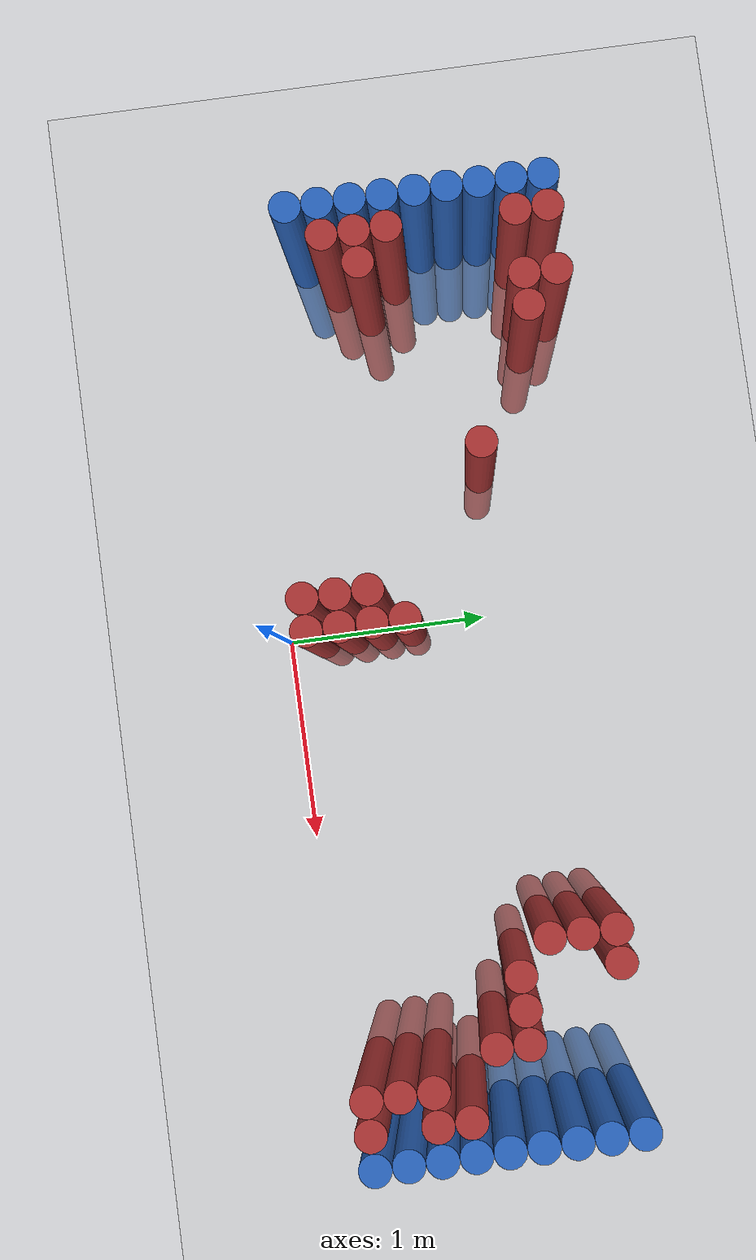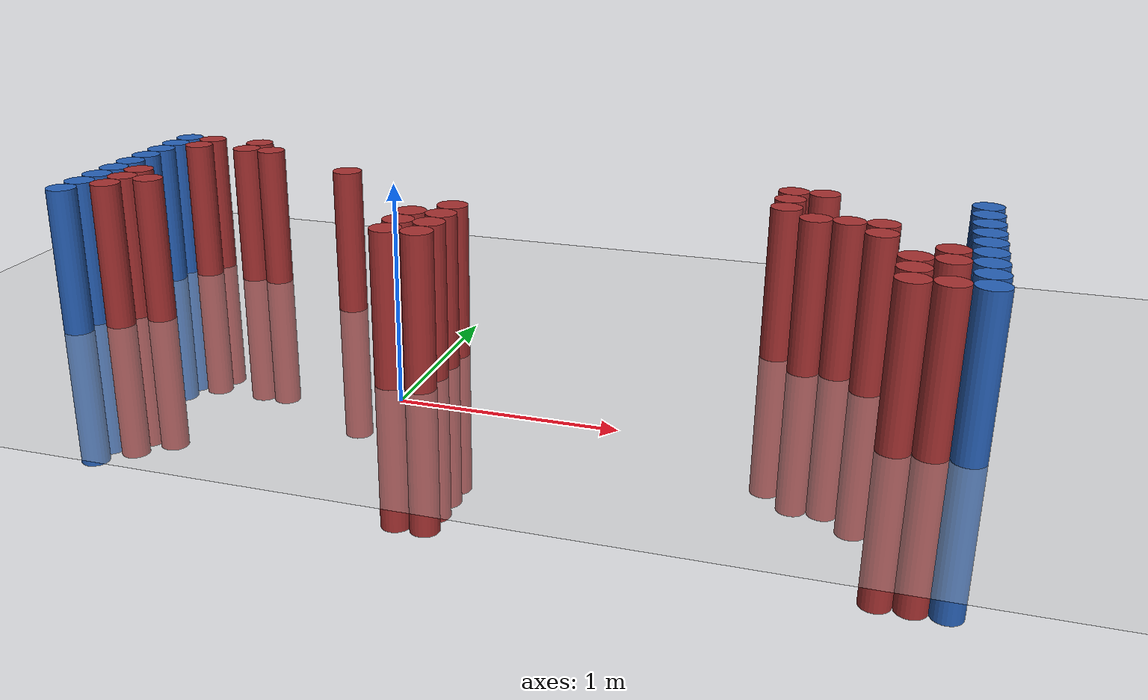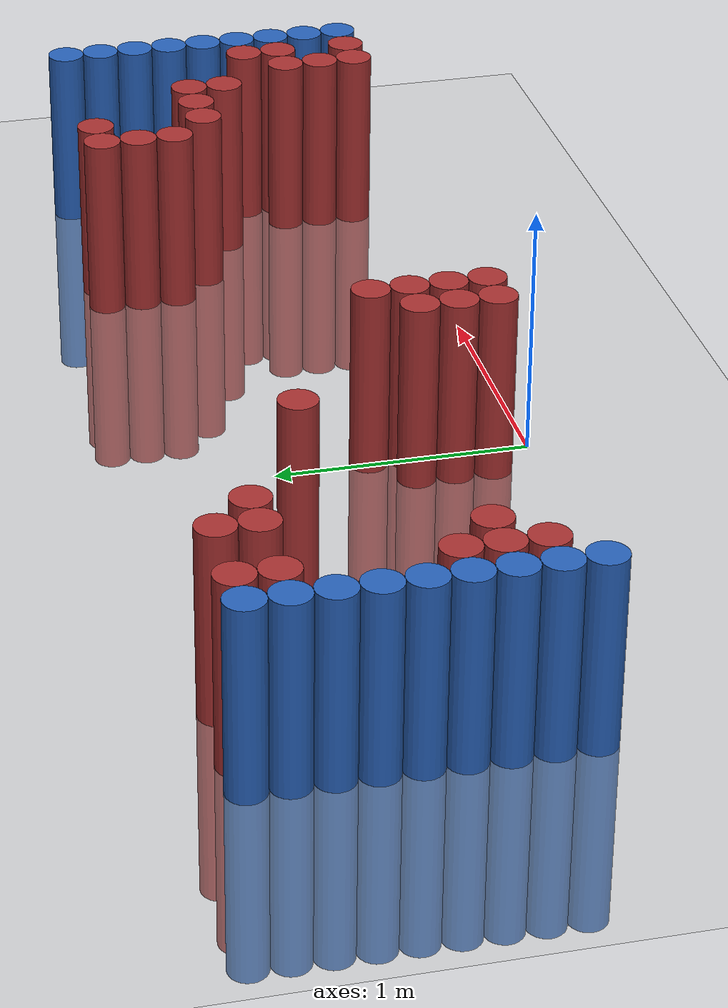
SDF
<sdf version="1.6">
 <world name="default">
  <model name="ground_plane">
   <static>1</static>
   <link name="link">
    <collision name="collision">
     <geometry><plane><normal>0 0 1</normal><size>100 100</size></plane></geometry>
     <surface><friction><ode><mu>100</mu><mu2>50</mu2></ode></friction></surface>
    </collision>
    <visual name="visual">
     <cast_shadows>0</cast_shadows>
     <geometry><plane><normal>0 0 1</normal><size>100 100</size></plane></geometry>
     <material>
      <script><uri>file://media/materials/scripts/gazebo.material</uri><name>Gazebo/Grey</name></script>
     </material>
    </visual>
   </link>
  </model>
  <model name="unit_cylinder_97">
   <static>1</static>
   <pose>-1.925000 0.325000 0.000000 0.000000 0.000000 0.000000</pose>
   <link name="link">
    <inertial>
     <mass>1</mass>
     <inertia><ixx>0.145833</ixx><ixy>0</ixy><ixz>0</ixz><iyy>0.145833</iyy><iyz>0</iyz><izz>0.125</izz></inertia>
    </inertial>
    <collision name="collision">
     <geometry><cylinder><radius>0.075000</radius><length>1.5</length></cylinder></geometry>
    </collision>
    <visual name="visual">
     <geometry><cylinder><radius>0.075000</radius><length>1.5</length></cylinder></geometry>
     <material>
      <ambient>0.152000 0.379000 0.720000 1</ambient>
      <diffuse>0.152000 0.379000 0.720000 1</diffuse>
     </material>
     <material>
      <script><name>Gazebo/Grey</name><uri>file://media/materials/scripts/gazebo.material</uri></script>
     </material>
    </visual>
   </link>
  </model>
  <model name="unit_cylinder_98">
   <static>1</static>
   <pose>-1.925000 0.475000 0.000000 0.000000 0.000000 0.000000</pose>
   <link name="link">
    <inertial>
     <mass>1</mass>
     <inertia><ixx>0.145833</ixx><ixy>0</ixy><ixz>0</ixz><iyy>0.145833</iyy><iyz>0</iyz><izz>0.125</izz></inertia>
    </inertial>
    <collision name="collision">
     <geometry><cylinder><radius>0.075000</radius><length>1.5</length></cylinder></geometry>
    </collision>
    <visual name="visual">
     <geometry><cylinder><radius>0.075000</radius><length>1.5</length></cylinder></geometry>
     <material>
      <ambient>0.152000 0.379000 0.720000 1</ambient>
      <diffuse>0.152000 0.379000 0.720000 1</diffuse>
     </material>
     <material>
      <script><name>Gazebo/Grey</name><uri>file://media/materials/scripts/gazebo.material</uri></script>
     </material>
    </visual>
   </link>
  </model>
  <model name="unit_cylinder_99">
   <static>1</static>
   <pose>-1.925000 0.625000 0.000000 0.000000 0.000000 0.000000</pose>
   <link name="link">
    <inertial>
     <mass>1</mass>
     <inertia><ixx>0.145833</ixx><ixy>0</ixy><ixz>0</ixz><iyy>0.145833</iyy><iyz>0</iyz><izz>0.125</izz></inertia>
    </inertial>
    <collision name="collision">
     <geometry><cylinder><radius>0.075000</radius><length>1.5</length></cylinder></geometry>
    </collision>
    <visual name="visual">
     <geometry><cylinder><radius>0.075000</radius><length>1.5</length></cylinder></geometry>
     <material>
      <ambient>0.152000 0.379000 0.720000 1</ambient>
      <diffuse>0.152000 0.379000 0.720000 1</diffuse>
     </material>
     <material>
      <script><name>Gazebo/Grey</name><uri>file://media/materials/scripts/gazebo.material</uri></script>
     </material>
    </visual>
   </link>
  </model>
  <model name="unit_cylinder_100">
   <static>1</static>
   <pose>-1.925000 0.775000 0.000000 0.000000 0.000000 0.000000</pose>
   <link name="link">
    <inertial>
     <mass>1</mass>
     <inertia><ixx>0.145833</ixx><ixy>0</ixy><ixz>0</ixz><iyy>0.145833</iyy><iyz>0</iyz><izz>0.125</izz></inertia>
    </inertial>
    <collision name="collision">
     <geometry><cylinder><radius>0.075000</radius><length>1.5</length></cylinder></geometry>
    </collision>
    <visual name="visual">
     <geometry><cylinder><radius>0.075000</radius><length>1.5</length></cylinder></geometry>
     <material>
      <ambient>0.152000 0.379000 0.720000 1</ambient>
      <diffuse>0.152000 0.379000 0.720000 1</diffuse>
     </material>
     <material>
      <script><name>Gazebo/Grey</name><uri>file://media/materials/scripts/gazebo.material</uri></script>
     </material>
    </visual>
   </link>
  </model>
  <model name="unit_cylinder_101">
   <static>1</static>
   <pose>-1.925000 0.925000 0.000000 0.000000 0.000000 0.000000</pose>
   <link name="link">
    <inertial>
     <mass>1</mass>
     <inertia><ixx>0.145833</ixx><ixy>0</ixy><ixz>0</ixz><iyy>0.145833</iyy><iyz>0</iyz><izz>0.125</izz></inertia>
    </inertial>
    <collision name="collision">
     <geometry><cylinder><radius>0.075000</radius><length>1.5</length></cylinder></geometry>
    </collision>
    <visual name="visual">
     <geometry><cylinder><radius>0.075000</radius><length>1.5</length></cylinder></geometry>
     <material>
      <ambient>0.152000 0.379000 0.720000 1</ambient>
      <diffuse>0.152000 0.379000 0.720000 1</diffuse>
     </material>
     <material>
      <script><name>Gazebo/Grey</name><uri>file://media/materials/scripts/gazebo.material</uri></script>
     </material>
    </visual>
   </link>
  </model>
  <model name="unit_cylinder_102">
   <static>1</static>
   <pose>-1.925000 1.075000 0.000000 0.000000 0.000000 0.000000</pose>
   <link name="link">
    <inertial>
     <mass>1</mass>
     <inertia><ixx>0.145833</ixx><ixy>0</ixy><ixz>0</ixz><iyy>0.145833</iyy><iyz>0</iyz><izz>0.125</izz></inertia>
    </inertial>
    <collision name="collision">
     <geometry><cylinder><radius>0.075000</radius><length>1.5</length></cylinder></geometry>
    </collision>
    <visual name="visual">
     <geometry><cylinder><radius>0.075000</radius><length>1.5</length></cylinder></geometry>
     <material>
      <ambient>0.152000 0.379000 0.720000 1</ambient>
      <diffuse>0.152000 0.379000 0.720000 1</diffuse>
     </material>
     <material>
      <script><name>Gazebo/Grey</name><uri>file://media/materials/scripts/gazebo.material</uri></script>
     </material>
    </visual>
   </link>
  </model>
  <model name="unit_cylinder_103">
   <static>1</static>
   <pose>-1.925000 1.225000 0.000000 0.000000 0.000000 0.000000</pose>
   <link name="link">
    <inertial>
     <mass>1</mass>
     <inertia><ixx>0.145833</ixx><ixy>0</ixy><ixz>0</ixz><iyy>0.145833</iyy><iyz>0</iyz><izz>0.125</izz></inertia>
    </inertial>
    <collision name="collision">
     <geometry><cylinder><radius>0.075000</radius><length>1.5</length></cylinder></geometry>
    </collision>
    <visual name="visual">
     <geometry><cylinder><radius>0.075000</radius><length>1.5</length></cylinder></geometry>
     <material>
      <ambient>0.152000 0.379000 0.720000 1</ambient>
      <diffuse>0.152000 0.379000 0.720000 1</diffuse>
     </material>
     <material>
      <script><name>Gazebo/Grey</name><uri>file://media/materials/scripts/gazebo.material</uri></script>
     </material>
    </visual>
   </link>
  </model>
  <model name="unit_cylinder_104">
   <static>1</static>
   <pose>-1.925000 1.375000 0.000000 0.000000 0.000000 0.000000</pose>
   <link name="link">
    <inertial>
     <mass>1</mass>
     <inertia><ixx>0.145833</ixx><ixy>0</ixy><ixz>0</ixz><iyy>0.145833</iyy><iyz>0</iyz><izz>0.125</izz></inertia>
    </inertial>
    <collision name="collision">
     <geometry><cylinder><radius>0.075000</radius><length>1.5</length></cylinder></geometry>
    </collision>
    <visual name="visual">
     <geometry><cylinder><radius>0.075000</radius><length>1.5</length></cylinder></geometry>
     <material>
      <ambient>0.152000 0.379000 0.720000 1</ambient>
      <diffuse>0.152000 0.379000 0.720000 1</diffuse>
     </material>
     <material>
      <script><name>Gazebo/Grey</name><uri>file://media/materials/scripts/gazebo.material</uri></script>
     </material>
    </visual>
   </link>
  </model>
  <model name="unit_cylinder_105">
   <static>1</static>
   <pose>-1.925000 1.525000 0.000000 0.000000 0.000000 0.000000</pose>
   <link name="link">
    <inertial>
     <mass>1</mass>
     <inertia><ixx>0.145833</ixx><ixy>0</ixy><ixz>0</ixz><iyy>0.145833</iyy><iyz>0</iyz><izz>0.125</izz></inertia>
    </inertial>
    <collision name="collision">
     <geometry><cylinder><radius>0.075000</radius><length>1.5</length></cylinder></geometry>
    </collision>
    <visual name="visual">
     <geometry><cylinder><radius>0.075000</radius><length>1.5</length></cylinder></geometry>
     <material>
      <ambient>0.152000 0.379000 0.720000 1</ambient>
      <diffuse>0.152000 0.379000 0.720000 1</diffuse>
     </material>
     <material>
      <script><name>Gazebo/Grey</name><uri>file://media/materials/scripts/gazebo.material</uri></script>
     </material>
    </visual>
   </link>
  </model>
  <model name="unit_cylinder_126">
   <static>1</static>
   <pose>-1.775000 0.475000 0.000000 0.000000 0.000000 0.000000</pose>
   <link name="link">
    <inertial>
     <mass>1</mass>
     <inertia><ixx>0.145833</ixx><ixy>0</ixy><ixz>0</ixz><iyy>0.145833</iyy><iyz>0</iyz><izz>0.125</izz></inertia>
    </inertial>
    <collision name="collision">
     <geometry><cylinder><radius>0.075000</radius><length>1.5</length></cylinder></geometry>
    </collision>
    <visual name="visual">
     <geometry><cylinder><radius>0.075000</radius><length>1.5</length></cylinder></geometry>
     <material>
      <ambient>0.648000 0.192000 0.192000 1</ambient>
      <diffuse>0.648000 0.192000 0.192000 1</diffuse>
     </material>
     <material>
      <script><name>Gazebo/Grey</name><uri>file://media/materials/scripts/gazebo.material</uri></script>
     </material>
    </visual>
   </link>
  </model>
  <model name="unit_cylinder_127">
   <static>1</static>
   <pose>-1.775000 0.625000 0.000000 0.000000 0.000000 0.000000</pose>
   <link name="link">
    <inertial>
     <mass>1</mass>
     <inertia><ixx>0.145833</ixx><ixy>0</ixy><ixz>0</ixz><iyy>0.145833</iyy><iyz>0</iyz><izz>0.125</izz></inertia>
    </inertial>
    <collision name="collision">
     <geometry><cylinder><radius>0.075000</radius><length>1.5</length></cylinder></geometry>
    </collision>
    <visual name="visual">
     <geometry><cylinder><radius>0.075000</radius><length>1.5</length></cylinder></geometry>
     <material>
      <ambient>0.648000 0.192000 0.192000 1</ambient>
      <diffuse>0.648000 0.192000 0.192000 1</diffuse>
     </material>
     <material>
      <script><name>Gazebo/Grey</name><uri>file://media/materials/scripts/gazebo.material</uri></script>
     </material>
    </visual>
   </link>
  </model>
  <model name="unit_cylinder_128">
   <static>1</static>
   <pose>-1.775000 0.775000 0.000000 0.000000 0.000000 0.000000</pose>
   <link name="link">
    <inertial>
     <mass>1</mass>
     <inertia><ixx>0.145833</ixx><ixy>0</ixy><ixz>0</ixz><iyy>0.145833</iyy><iyz>0</iyz><izz>0.125</izz></inertia>
    </inertial>
    <collision name="collision">
     <geometry><cylinder><radius>0.075000</radius><length>1.5</length></cylinder></geometry>
    </collision>
    <visual name="visual">
     <geometry><cylinder><radius>0.075000</radius><length>1.5</length></cylinder></geometry>
     <material>
      <ambient>0.648000 0.192000 0.192000 1</ambient>
      <diffuse>0.648000 0.192000 0.192000 1</diffuse>
     </material>
     <material>
      <script><name>Gazebo/Grey</name><uri>file://media/materials/scripts/gazebo.material</uri></script>
     </material>
    </visual>
   </link>
  </model>
  <model name="unit_cylinder_129">
   <static>1</static>
   <pose>-1.775000 1.375000 0.000000 0.000000 0.000000 0.000000</pose>
   <link name="link">
    <inertial>
     <mass>1</mass>
     <inertia><ixx>0.145833</ixx><ixy>0</ixy><ixz>0</ixz><iyy>0.145833</iyy><iyz>0</iyz><izz>0.125</izz></inertia>
    </inertial>
    <collision name="collision">
     <geometry><cylinder><radius>0.075000</radius><length>1.5</length></cylinder></geometry>
    </collision>
    <visual name="visual">
     <geometry><cylinder><radius>0.075000</radius><length>1.5</length></cylinder></geometry>
     <material>
      <ambient>0.648000 0.192000 0.192000 1</ambient>
      <diffuse>0.648000 0.192000 0.192000 1</diffuse>
     </material>
     <material>
      <script><name>Gazebo/Grey</name><uri>file://media/materials/scripts/gazebo.material</uri></script>
     </material>
    </visual>
   </link>
  </model>
  <model name="unit_cylinder_130">
   <static>1</static>
   <pose>-1.775000 1.525000 0.000000 0.000000 0.000000 0.000000</pose>
   <link name="link">
    <inertial>
     <mass>1</mass>
     <inertia><ixx>0.145833</ixx><ixy>0</ixy><ixz>0</ixz><iyy>0.145833</iyy><iyz>0</iyz><izz>0.125</izz></inertia>
    </inertial>
    <collision name="collision">
     <geometry><cylinder><radius>0.075000</radius><length>1.5</length></cylinder></geometry>
    </collision>
    <visual name="visual">
     <geometry><cylinder><radius>0.075000</radius><length>1.5</length></cylinder></geometry>
     <material>
      <ambient>0.648000 0.192000 0.192000 1</ambient>
      <diffuse>0.648000 0.192000 0.192000 1</diffuse>
     </material>
     <material>
      <script><name>Gazebo/Grey</name><uri>file://media/materials/scripts/gazebo.material</uri></script>
     </material>
    </visual>
   </link>
  </model>
  <model name="unit_cylinder_146">
   <static>1</static>
   <pose>-1.625000 0.625000 0.000000 0.000000 0.000000 0.000000</pose>
   <link name="link">
    <inertial>
     <mass>1</mass>
     <inertia><ixx>0.145833</ixx><ixy>0</ixy><ixz>0</ixz><iyy>0.145833</iyy><iyz>0</iyz><izz>0.125</izz></inertia>
    </inertial>
    <collision name="collision">
     <geometry><cylinder><radius>0.075000</radius><length>1.5</length></cylinder></geometry>
    </collision>
    <visual name="visual">
     <geometry><cylinder><radius>0.075000</radius><length>1.5</length></cylinder></geometry>
     <material>
      <ambient>0.648000 0.192000 0.192000 1</ambient>
      <diffuse>0.648000 0.192000 0.192000 1</diffuse>
     </material>
     <material>
      <script><name>Gazebo/Grey</name><uri>file://media/materials/scripts/gazebo.material</uri></script>
     </material>
    </visual>
   </link>
  </model>
  <model name="unit_cylinder_152">
   <static>1</static>
   <pose>-1.475000 1.375000 0.000000 0.000000 0.000000 0.000000</pose>
   <link name="link">
    <inertial>
     <mass>1</mass>
     <inertia><ixx>0.145833</ixx><ixy>0</ixy><ixz>0</ixz><iyy>0.145833</iyy><iyz>0</iyz><izz>0.125</izz></inertia>
    </inertial>
    <collision name="collision">
     <geometry><cylinder><radius>0.075000</radius><length>1.5</length></cylinder></geometry>
    </collision>
    <visual name="visual">
     <geometry><cylinder><radius>0.075000</radius><length>1.5</length></cylinder></geometry>
     <material>
      <ambient>0.648000 0.192000 0.192000 1</ambient>
      <diffuse>0.648000 0.192000 0.192000 1</diffuse>
     </material>
     <material>
      <script><name>Gazebo/Grey</name><uri>file://media/materials/scripts/gazebo.material</uri></script>
     </material>
    </visual>
   </link>
  </model>
  <model name="unit_cylinder_153">
   <static>1</static>
   <pose>-1.475000 1.525000 0.000000 0.000000 0.000000 0.000000</pose>
   <link name="link">
    <inertial>
     <mass>1</mass>
     <inertia><ixx>0.145833</ixx><ixy>0</ixy><ixz>0</ixz><iyy>0.145833</iyy><iyz>0</iyz><izz>0.125</izz></inertia>
    </inertial>
    <collision name="collision">
     <geometry><cylinder><radius>0.075000</radius><length>1.5</length></cylinder></geometry>
    </collision>
    <visual name="visual">
     <geometry><cylinder><radius>0.075000</radius><length>1.5</length></cylinder></geometry>
     <material>
      <ambient>0.648000 0.192000 0.192000 1</ambient>
      <diffuse>0.648000 0.192000 0.192000 1</diffuse>
     </material>
     <material>
      <script><name>Gazebo/Grey</name><uri>file://media/materials/scripts/gazebo.material</uri></script>
     </material>
    </visual>
   </link>
  </model>
  <model name="unit_cylinder_156">
   <static>1</static>
   <pose>-1.325000 1.375000 0.000000 0.000000 0.000000 0.000000</pose>
   <link name="link">
    <inertial>
     <mass>1</mass>
     <inertia><ixx>0.145833</ixx><ixy>0</ixy><ixz>0</ixz><iyy>0.145833</iyy><iyz>0</iyz><izz>0.125</izz></inertia>
    </inertial>
    <collision name="collision">
     <geometry><cylinder><radius>0.075000</radius><length>1.5</length></cylinder></geometry>
    </collision>
    <visual name="visual">
     <geometry><cylinder><radius>0.075000</radius><length>1.5</length></cylinder></geometry>
     <material>
      <ambient>0.648000 0.192000 0.192000 1</ambient>
      <diffuse>0.648000 0.192000 0.192000 1</diffuse>
     </material>
     <material>
      <script><name>Gazebo/Grey</name><uri>file://media/materials/scripts/gazebo.material</uri></script>
     </material>
    </visual>
   </link>
  </model>
  <model name="unit_cylinder_161">
   <static>1</static>
   <pose>-0.725000 1.075000 0.000000 0.000000 0.000000 0.000000</pose>
   <link name="link">
    <inertial>
     <mass>1</mass>
     <inertia><ixx>0.145833</ixx><ixy>0</ixy><ixz>0</ixz><iyy>0.145833</iyy><iyz>0</iyz><izz>0.125</izz></inertia>
    </inertial>
    <collision name="collision">
     <geometry><cylinder><radius>0.075000</radius><length>1.5</length></cylinder></geometry>
    </collision>
    <visual name="visual">
     <geometry><cylinder><radius>0.075000</radius><length>1.5</length></cylinder></geometry>
     <material>
      <ambient>0.648000 0.192000 0.192000 1</ambient>
      <diffuse>0.648000 0.192000 0.192000 1</diffuse>
     </material>
     <material>
      <script><name>Gazebo/Grey</name><uri>file://media/materials/scripts/gazebo.material</uri></script>
     </material>
    </visual>
   </link>
  </model>
  <model name="unit_cylinder_165">
   <static>1</static>
   <pose>-0.125000 0.175000 0.000000 0.000000 0.000000 0.000000</pose>
   <link name="link">
    <inertial>
     <mass>1</mass>
     <inertia><ixx>0.145833</ixx><ixy>0</ixy><ixz>0</ixz><iyy>0.145833</iyy><iyz>0</iyz><izz>0.125</izz></inertia>
    </inertial>
    <collision name="collision">
     <geometry><cylinder><radius>0.075000</radius><length>1.5</length></cylinder></geometry>
    </collision>
    <visual name="visual">
     <geometry><cylinder><radius>0.075000</radius><length>1.5</length></cylinder></geometry>
     <material>
      <ambient>0.648000 0.192000 0.192000 1</ambient>
      <diffuse>0.648000 0.192000 0.192000 1</diffuse>
     </material>
     <material>
      <script><name>Gazebo/Grey</name><uri>file://media/materials/scripts/gazebo.material</uri></script>
     </material>
    </visual>
   </link>
  </model>
  <model name="unit_cylinder_166">
   <static>1</static>
   <pose>-0.125000 0.325000 0.000000 0.000000 0.000000 0.000000</pose>
   <link name="link">
    <inertial>
     <mass>1</mass>
     <inertia><ixx>0.145833</ixx><ixy>0</ixy><ixz>0</ixz><iyy>0.145833</iyy><iyz>0</iyz><izz>0.125</izz></inertia>
    </inertial>
    <collision name="collision">
     <geometry><cylinder><radius>0.075000</radius><length>1.5</length></cylinder></geometry>
    </collision>
    <visual name="visual">
     <geometry><cylinder><radius>0.075000</radius><length>1.5</length></cylinder></geometry>
     <material>
      <ambient>0.648000 0.192000 0.192000 1</ambient>
      <diffuse>0.648000 0.192000 0.192000 1</diffuse>
     </material>
     <material>
      <script><name>Gazebo/Grey</name><uri>file://media/materials/scripts/gazebo.material</uri></script>
     </material>
    </visual>
   </link>
  </model>
  <model name="unit_cylinder_167">
   <static>1</static>
   <pose>-0.125000 0.475000 0.000000 0.000000 0.000000 0.000000</pose>
   <link name="link">
    <inertial>
     <mass>1</mass>
     <inertia><ixx>0.145833</ixx><ixy>0</ixy><ixz>0</ixz><iyy>0.145833</iyy><iyz>0</iyz><izz>0.125</izz></inertia>
    </inertial>
    <collision name="collision">
     <geometry><cylinder><radius>0.075000</radius><length>1.5</length></cylinder></geometry>
    </collision>
    <visual name="visual">
     <geometry><cylinder><radius>0.075000</radius><length>1.5</length></cylinder></geometry>
     <material>
      <ambient>0.648000 0.192000 0.192000 1</ambient>
      <diffuse>0.648000 0.192000 0.192000 1</diffuse>
     </material>
     <material>
      <script><name>Gazebo/Grey</name><uri>file://media/materials/scripts/gazebo.material</uri></script>
     </material>
    </visual>
   </link>
  </model>
  <model name="unit_cylinder_169">
   <static>1</static>
   <pose>0.025000 0.175000 0.000000 0.000000 0.000000 0.000000</pose>
   <link name="link">
    <inertial>
     <mass>1</mass>
     <inertia><ixx>0.145833</ixx><ixy>0</ixy><ixz>0</ixz><iyy>0.145833</iyy><iyz>0</iyz><izz>0.125</izz></inertia>
    </inertial>
    <collision name="collision">
     <geometry><cylinder><radius>0.075000</radius><length>1.5</length></cylinder></geometry>
    </collision>
    <visual name="visual">
     <geometry><cylinder><radius>0.075000</radius><length>1.5</length></cylinder></geometry>
     <material>
      <ambient>0.648000 0.192000 0.192000 1</ambient>
      <diffuse>0.648000 0.192000 0.192000 1</diffuse>
     </material>
     <material>
      <script><name>Gazebo/Grey</name><uri>file://media/materials/scripts/gazebo.material</uri></script>
     </material>
    </visual>
   </link>
  </model>
  <model name="unit_cylinder_170">
   <static>1</static>
   <pose>0.025000 0.325000 0.000000 0.000000 0.000000 0.000000</pose>
   <link name="link">
    <inertial>
     <mass>1</mass>
     <inertia><ixx>0.145833</ixx><ixy>0</ixy><ixz>0</ixz><iyy>0.145833</iyy><iyz>0</iyz><izz>0.125</izz></inertia>
    </inertial>
    <collision name="collision">
     <geometry><cylinder><radius>0.075000</radius><length>1.5</length></cylinder></geometry>
    </collision>
    <visual name="visual">
     <geometry><cylinder><radius>0.075000</radius><length>1.5</length></cylinder></geometry>
     <material>
      <ambient>0.648000 0.192000 0.192000 1</ambient>
      <diffuse>0.648000 0.192000 0.192000 1</diffuse>
     </material>
     <material>
      <script><name>Gazebo/Grey</name><uri>file://media/materials/scripts/gazebo.material</uri></script>
     </material>
    </visual>
   </link>
  </model>
  <model name="unit_cylinder_171">
   <static>1</static>
   <pose>0.025000 0.475000 0.000000 0.000000 0.000000 0.000000</pose>
   <link name="link">
    <inertial>
     <mass>1</mass>
     <inertia><ixx>0.145833</ixx><ixy>0</ixy><ixz>0</ixz><iyy>0.145833</iyy><iyz>0</iyz><izz>0.125</izz></inertia>
    </inertial>
    <collision name="collision">
     <geometry><cylinder><radius>0.075000</radius><length>1.5</length></cylinder></geometry>
    </collision>
    <visual name="visual">
     <geometry><cylinder><radius>0.075000</radius><length>1.5</length></cylinder></geometry>
     <material>
      <ambient>0.648000 0.192000 0.192000 1</ambient>
      <diffuse>0.648000 0.192000 0.192000 1</diffuse>
     </material>
     <material>
      <script><name>Gazebo/Grey</name><uri>file://media/materials/scripts/gazebo.material</uri></script>
     </material>
    </visual>
   </link>
  </model>
  <model name="unit_cylinder_172">
   <static>1</static>
   <pose>0.025000 0.625000 0.000000 0.000000 0.000000 0.000000</pose>
   <link name="link">
    <inertial>
     <mass>1</mass>
     <inertia><ixx>0.145833</ixx><ixy>0</ixy><ixz>0</ixz><iyy>0.145833</iyy><iyz>0</iyz><izz>0.125</izz></inertia>
    </inertial>
    <collision name="collision">
     <geometry><cylinder><radius>0.075000</radius><length>1.5</length></cylinder></geometry>
    </collision>
    <visual name="visual">
     <geometry><cylinder><radius>0.075000</radius><length>1.5</length></cylinder></geometry>
     <material>
      <ambient>0.648000 0.192000 0.192000 1</ambient>
      <diffuse>0.648000 0.192000 0.192000 1</diffuse>
     </material>
     <material>
      <script><name>Gazebo/Grey</name><uri>file://media/materials/scripts/gazebo.material</uri></script>
     </material>
    </visual>
   </link>
  </model>
  <model name="unit_cylinder_203">
   <static>1</static>
   <pose>1.525000 1.075000 0.000000 0.000000 0.000000 0.000000</pose>
   <link name="link">
    <inertial>
     <mass>1</mass>
     <inertia><ixx>0.145833</ixx><ixy>0</ixy><ixz>0</ixz><iyy>0.145833</iyy><iyz>0</iyz><izz>0.125</izz></inertia>
    </inertial>
    <collision name="collision">
     <geometry><cylinder><radius>0.075000</radius><length>1.5</length></cylinder></geometry>
    </collision>
    <visual name="visual">
     <geometry><cylinder><radius>0.075000</radius><length>1.5</length></cylinder></geometry>
     <material>
      <ambient>0.648000 0.192000 0.192000 1</ambient>
      <diffuse>0.648000 0.192000 0.192000 1</diffuse>
     </material>
     <material>
      <script><name>Gazebo/Grey</name><uri>file://media/materials/scripts/gazebo.material</uri></script>
     </material>
    </visual>
   </link>
  </model>
  <model name="unit_cylinder_204">
   <static>1</static>
   <pose>1.525000 1.225000 0.000000 0.000000 0.000000 0.000000</pose>
   <link name="link">
    <inertial>
     <mass>1</mass>
     <inertia><ixx>0.145833</ixx><ixy>0</ixy><ixz>0</ixz><iyy>0.145833</iyy><iyz>0</iyz><izz>0.125</izz></inertia>
    </inertial>
    <collision name="collision">
     <geometry><cylinder><radius>0.075000</radius><length>1.5</length></cylinder></geometry>
    </collision>
    <visual name="visual">
     <geometry><cylinder><radius>0.075000</radius><length>1.5</length></cylinder></geometry>
     <material>
      <ambient>0.648000 0.192000 0.192000 1</ambient>
      <diffuse>0.648000 0.192000 0.192000 1</diffuse>
     </material>
     <material>
      <script><name>Gazebo/Grey</name><uri>file://media/materials/scripts/gazebo.material</uri></script>
     </material>
    </visual>
   </link>
  </model>
  <model name="unit_cylinder_205">
   <static>1</static>
   <pose>1.525000 1.375000 0.000000 0.000000 0.000000 0.000000</pose>
   <link name="link">
    <inertial>
     <mass>1</mass>
     <inertia><ixx>0.145833</ixx><ixy>0</ixy><ixz>0</ixz><iyy>0.145833</iyy><iyz>0</iyz><izz>0.125</izz></inertia>
    </inertial>
    <collision name="collision">
     <geometry><cylinder><radius>0.075000</radius><length>1.5</length></cylinder></geometry>
    </collision>
    <visual name="visual">
     <geometry><cylinder><radius>0.075000</radius><length>1.5</length></cylinder></geometry>
     <material>
      <ambient>0.648000 0.192000 0.192000 1</ambient>
      <diffuse>0.648000 0.192000 0.192000 1</diffuse>
     </material>
     <material>
      <script><name>Gazebo/Grey</name><uri>file://media/materials/scripts/gazebo.material</uri></script>
     </material>
    </visual>
   </link>
  </model>
  <model name="unit_cylinder_214">
   <static>1</static>
   <pose>1.675000 0.925000 0.000000 0.000000 0.000000 0.000000</pose>
   <link name="link">
    <inertial>
     <mass>1</mass>
     <inertia><ixx>0.145833</ixx><ixy>0</ixy><ixz>0</ixz><iyy>0.145833</iyy><iyz>0</iyz><izz>0.125</izz></inertia>
    </inertial>
    <collision name="collision">
     <geometry><cylinder><radius>0.075000</radius><length>1.5</length></cylinder></geometry>
    </collision>
    <visual name="visual">
     <geometry><cylinder><radius>0.075000</radius><length>1.5</length></cylinder></geometry>
     <material>
      <ambient>0.648000 0.192000 0.192000 1</ambient>
      <diffuse>0.648000 0.192000 0.192000 1</diffuse>
     </material>
     <material>
      <script><name>Gazebo/Grey</name><uri>file://media/materials/scripts/gazebo.material</uri></script>
     </material>
    </visual>
   </link>
  </model>
  <model name="unit_cylinder_215">
   <static>1</static>
   <pose>1.675000 1.375000 0.000000 0.000000 0.000000 0.000000</pose>
   <link name="link">
    <inertial>
     <mass>1</mass>
     <inertia><ixx>0.145833</ixx><ixy>0</ixy><ixz>0</ixz><iyy>0.145833</iyy><iyz>0</iyz><izz>0.125</izz></inertia>
    </inertial>
    <collision name="collision">
     <geometry><cylinder><radius>0.075000</radius><length>1.5</length></cylinder></geometry>
    </collision>
    <visual name="visual">
     <geometry><cylinder><radius>0.075000</radius><length>1.5</length></cylinder></geometry>
     <material>
      <ambient>0.648000 0.192000 0.192000 1</ambient>
      <diffuse>0.648000 0.192000 0.192000 1</diffuse>
     </material>
     <material>
      <script><name>Gazebo/Grey</name><uri>file://media/materials/scripts/gazebo.material</uri></script>
     </material>
    </visual>
   </link>
  </model>
  <model name="unit_cylinder_222">
   <static>1</static>
   <pose>1.825000 0.925000 0.000000 0.000000 0.000000 0.000000</pose>
   <link name="link">
    <inertial>
     <mass>1</mass>
     <inertia><ixx>0.145833</ixx><ixy>0</ixy><ixz>0</ixz><iyy>0.145833</iyy><iyz>0</iyz><izz>0.125</izz></inertia>
    </inertial>
    <collision name="collision">
     <geometry><cylinder><radius>0.075000</radius><length>1.5</length></cylinder></geometry>
    </collision>
    <visual name="visual">
     <geometry><cylinder><radius>0.075000</radius><length>1.5</length></cylinder></geometry>
     <material>
      <ambient>0.648000 0.192000 0.192000 1</ambient>
      <diffuse>0.648000 0.192000 0.192000 1</diffuse>
     </material>
     <material>
      <script><name>Gazebo/Grey</name><uri>file://media/materials/scripts/gazebo.material</uri></script>
     </material>
    </visual>
   </link>
  </model>
  <model name="unit_cylinder_228">
   <static>1</static>
   <pose>1.975000 0.775000 0.000000 0.000000 0.000000 0.000000</pose>
   <link name="link">
    <inertial>
     <mass>1</mass>
     <inertia><ixx>0.145833</ixx><ixy>0</ixy><ixz>0</ixz><iyy>0.145833</iyy><iyz>0</iyz><izz>0.125</izz></inertia>
    </inertial>
    <collision name="collision">
     <geometry><cylinder><radius>0.075000</radius><length>1.5</length></cylinder></geometry>
    </collision>
    <visual name="visual">
     <geometry><cylinder><radius>0.075000</radius><length>1.5</length></cylinder></geometry>
     <material>
      <ambient>0.648000 0.192000 0.192000 1</ambient>
      <diffuse>0.648000 0.192000 0.192000 1</diffuse>
     </material>
     <material>
      <script><name>Gazebo/Grey</name><uri>file://media/materials/scripts/gazebo.material</uri></script>
     </material>
    </visual>
   </link>
  </model>
  <model name="unit_cylinder_229">
   <static>1</static>
   <pose>1.975000 0.925000 0.000000 0.000000 0.000000 0.000000</pose>
   <link name="link">
    <inertial>
     <mass>1</mass>
     <inertia><ixx>0.145833</ixx><ixy>0</ixy><ixz>0</ixz><iyy>0.145833</iyy><iyz>0</iyz><izz>0.125</izz></inertia>
    </inertial>
    <collision name="collision">
     <geometry><cylinder><radius>0.075000</radius><length>1.5</length></cylinder></geometry>
    </collision>
    <visual name="visual">
     <geometry><cylinder><radius>0.075000</radius><length>1.5</length></cylinder></geometry>
     <material>
      <ambient>0.648000 0.192000 0.192000 1</ambient>
      <diffuse>0.648000 0.192000 0.192000 1</diffuse>
     </material>
     <material>
      <script><name>Gazebo/Grey</name><uri>file://media/materials/scripts/gazebo.material</uri></script>
     </material>
    </visual>
   </link>
  </model>
  <model name="unit_cylinder_234">
   <static>1</static>
   <pose>2.125000 0.175000 0.000000 0.000000 0.000000 0.000000</pose>
   <link name="link">
    <inertial>
     <mass>1</mass>
     <inertia><ixx>0.145833</ixx><ixy>0</ixy><ixz>0</ixz><iyy>0.145833</iyy><iyz>0</iyz><izz>0.125</izz></inertia>
    </inertial>
    <collision name="collision">
     <geometry><cylinder><radius>0.075000</radius><length>1.5</length></cylinder></geometry>
    </collision>
    <visual name="visual">
     <geometry><cylinder><radius>0.075000</radius><length>1.5</length></cylinder></geometry>
     <material>
      <ambient>0.648000 0.192000 0.192000 1</ambient>
      <diffuse>0.648000 0.192000 0.192000 1</diffuse>
     </material>
     <material>
      <script><name>Gazebo/Grey</name><uri>file://media/materials/scripts/gazebo.material</uri></script>
     </material>
    </visual>
   </link>
  </model>
  <model name="unit_cylinder_235">
   <static>1</static>
   <pose>2.125000 0.325000 0.000000 0.000000 0.000000 0.000000</pose>
   <link name="link">
    <inertial>
     <mass>1</mass>
     <inertia><ixx>0.145833</ixx><ixy>0</ixy><ixz>0</ixz><iyy>0.145833</iyy><iyz>0</iyz><izz>0.125</izz></inertia>
    </inertial>
    <collision name="collision">
     <geometry><cylinder><radius>0.075000</radius><length>1.5</length></cylinder></geometry>
    </collision>
    <visual name="visual">
     <geometry><cylinder><radius>0.075000</radius><length>1.5</length></cylinder></geometry>
     <material>
      <ambient>0.648000 0.192000 0.192000 1</ambient>
      <diffuse>0.648000 0.192000 0.192000 1</diffuse>
     </material>
     <material>
      <script><name>Gazebo/Grey</name><uri>file://media/materials/scripts/gazebo.material</uri></script>
     </material>
    </visual>
   </link>
  </model>
  <model name="unit_cylinder_236">
   <static>1</static>
   <pose>2.125000 0.475000 0.000000 0.000000 0.000000 0.000000</pose>
   <link name="link">
    <inertial>
     <mass>1</mass>
     <inertia><ixx>0.145833</ixx><ixy>0</ixy><ixz>0</ixz><iyy>0.145833</iyy><iyz>0</iyz><izz>0.125</izz></inertia>
    </inertial>
    <collision name="collision">
     <geometry><cylinder><radius>0.075000</radius><length>1.5</length></cylinder></geometry>
    </collision>
    <visual name="visual">
     <geometry><cylinder><radius>0.075000</radius><length>1.5</length></cylinder></geometry>
     <material>
      <ambient>0.648000 0.192000 0.192000 1</ambient>
      <diffuse>0.648000 0.192000 0.192000 1</diffuse>
     </material>
     <material>
      <script><name>Gazebo/Grey</name><uri>file://media/materials/scripts/gazebo.material</uri></script>
     </material>
    </visual>
   </link>
  </model>
  <model name="unit_cylinder_247">
   <static>1</static>
   <pose>2.275000 0.175000 0.000000 0.000000 0.000000 0.000000</pose>
   <link name="link">
    <inertial>
     <mass>1</mass>
     <inertia><ixx>0.145833</ixx><ixy>0</ixy><ixz>0</ixz><iyy>0.145833</iyy><iyz>0</iyz><izz>0.125</izz></inertia>
    </inertial>
    <collision name="collision">
     <geometry><cylinder><radius>0.075000</radius><length>1.5</length></cylinder></geometry>
    </collision>
    <visual name="visual">
     <geometry><cylinder><radius>0.075000</radius><length>1.5</length></cylinder></geometry>
     <material>
      <ambient>0.648000 0.192000 0.192000 1</ambient>
      <diffuse>0.648000 0.192000 0.192000 1</diffuse>
     </material>
     <material>
      <script><name>Gazebo/Grey</name><uri>file://media/materials/scripts/gazebo.material</uri></script>
     </material>
    </visual>
   </link>
  </model>
  <model name="unit_cylinder_248">
   <static>1</static>
   <pose>2.275000 0.475000 0.000000 0.000000 0.000000 0.000000</pose>
   <link name="link">
    <inertial>
     <mass>1</mass>
     <inertia><ixx>0.145833</ixx><ixy>0</ixy><ixz>0</ixz><iyy>0.145833</iyy><iyz>0</iyz><izz>0.125</izz></inertia>
    </inertial>
    <collision name="collision">
     <geometry><cylinder><radius>0.075000</radius><length>1.5</length></cylinder></geometry>
    </collision>
    <visual name="visual">
     <geometry><cylinder><radius>0.075000</radius><length>1.5</length></cylinder></geometry>
     <material>
      <ambient>0.648000 0.192000 0.192000 1</ambient>
      <diffuse>0.648000 0.192000 0.192000 1</diffuse>
     </material>
     <material>
      <script><name>Gazebo/Grey</name><uri>file://media/materials/scripts/gazebo.material</uri></script>
     </material>
    </visual>
   </link>
  </model>
  <model name="unit_cylinder_249">
   <static>1</static>
   <pose>2.275000 0.625000 0.000000 0.000000 0.000000 0.000000</pose>
   <link name="link">
    <inertial>
     <mass>1</mass>
     <inertia><ixx>0.145833</ixx><ixy>0</ixy><ixz>0</ixz><iyy>0.145833</iyy><iyz>0</iyz><izz>0.125</izz></inertia>
    </inertial>
    <collision name="collision">
     <geometry><cylinder><radius>0.075000</radius><length>1.5</length></cylinder></geometry>
    </collision>
    <visual name="visual">
     <geometry><cylinder><radius>0.075000</radius><length>1.5</length></cylinder></geometry>
     <material>
      <ambient>0.648000 0.192000 0.192000 1</ambient>
      <diffuse>0.648000 0.192000 0.192000 1</diffuse>
     </material>
     <material>
      <script><name>Gazebo/Grey</name><uri>file://media/materials/scripts/gazebo.material</uri></script>
     </material>
    </visual>
   </link>
  </model>
  <model name="unit_cylinder_262">
   <static>1</static>
   <pose>2.425000 0.175000 0.000000 0.000000 0.000000 0.000000</pose>
   <link name="link">
    <inertial>
     <mass>1</mass>
     <inertia><ixx>0.145833</ixx><ixy>0</ixy><ixz>0</ixz><iyy>0.145833</iyy><iyz>0</iyz><izz>0.125</izz></inertia>
    </inertial>
    <collision name="collision">
     <geometry><cylinder><radius>0.075000</radius><length>1.5</length></cylinder></geometry>
    </collision>
    <visual name="visual">
     <geometry><cylinder><radius>0.075000</radius><length>1.5</length></cylinder></geometry>
     <material>
      <ambient>0.152000 0.379000 0.720000 1</ambient>
      <diffuse>0.152000 0.379000 0.720000 1</diffuse>
     </material>
     <material>
      <script><name>Gazebo/Grey</name><uri>file://media/materials/scripts/gazebo.material</uri></script>
     </material>
    </visual>
   </link>
  </model>
  <model name="unit_cylinder_263">
   <static>1</static>
   <pose>2.425000 0.325000 0.000000 0.000000 0.000000 0.000000</pose>
   <link name="link">
    <inertial>
     <mass>1</mass>
     <inertia><ixx>0.145833</ixx><ixy>0</ixy><ixz>0</ixz><iyy>0.145833</iyy><iyz>0</iyz><izz>0.125</izz></inertia>
    </inertial>
    <collision name="collision">
     <geometry><cylinder><radius>0.075000</radius><length>1.5</length></cylinder></geometry>
    </collision>
    <visual name="visual">
     <geometry><cylinder><radius>0.075000</radius><length>1.5</length></cylinder></geometry>
     <material>
      <ambient>0.152000 0.379000 0.720000 1</ambient>
      <diffuse>0.152000 0.379000 0.720000 1</diffuse>
     </material>
     <material>
      <script><name>Gazebo/Grey</name><uri>file://media/materials/scripts/gazebo.material</uri></script>
     </material>
    </visual>
   </link>
  </model>
  <model name="unit_cylinder_264">
   <static>1</static>
   <pose>2.425000 0.475000 0.000000 0.000000 0.000000 0.000000</pose>
   <link name="link">
    <inertial>
     <mass>1</mass>
     <inertia><ixx>0.145833</ixx><ixy>0</ixy><ixz>0</ixz><iyy>0.145833</iyy><iyz>0</iyz><izz>0.125</izz></inertia>
    </inertial>
    <collision name="collision">
     <geometry><cylinder><radius>0.075000</radius><length>1.5</length></cylinder></geometry>
    </collision>
    <visual name="visual">
     <geometry><cylinder><radius>0.075000</radius><length>1.5</length></cylinder></geometry>
     <material>
      <ambient>0.152000 0.379000 0.720000 1</ambient>
      <diffuse>0.152000 0.379000 0.720000 1</diffuse>
     </material>
     <material>
      <script><name>Gazebo/Grey</name><uri>file://media/materials/scripts/gazebo.material</uri></script>
     </material>
    </visual>
   </link>
  </model>
  <model name="unit_cylinder_265">
   <static>1</static>
   <pose>2.425000 0.625000 0.000000 0.000000 0.000000 0.000000</pose>
   <link name="link">
    <inertial>
     <mass>1</mass>
     <inertia><ixx>0.145833</ixx><ixy>0</ixy><ixz>0</ixz><iyy>0.145833</iyy><iyz>0</iyz><izz>0.125</izz></inertia>
    </inertial>
    <collision name="collision">
     <geometry><cylinder><radius>0.075000</radius><length>1.5</length></cylinder></geometry>
    </collision>
    <visual name="visual">
     <geometry><cylinder><radius>0.075000</radius><length>1.5</length></cylinder></geometry>
     <material>
      <ambient>0.152000 0.379000 0.720000 1</ambient>
      <diffuse>0.152000 0.379000 0.720000 1</diffuse>
     </material>
     <material>
      <script><name>Gazebo/Grey</name><uri>file://media/materials/scripts/gazebo.material</uri></script>
     </material>
    </visual>
   </link>
  </model>
  <model name="unit_cylinder_266">
   <static>1</static>
   <pose>2.425000 0.775000 0.000000 0.000000 0.000000 0.000000</pose>
   <link name="link">
    <inertial>
     <mass>1</mass>
     <inertia><ixx>0.145833</ixx><ixy>0</ixy><ixz>0</ixz><iyy>0.145833</iyy><iyz>0</iyz><izz>0.125</izz></inertia>
    </inertial>
    <collision name="collision">
     <geometry><cylinder><radius>0.075000</radius><length>1.5</length></cylinder></geometry>
    </collision>
    <visual name="visual">
     <geometry><cylinder><radius>0.075000</radius><length>1.5</length></cylinder></geometry>
     <material>
      <ambient>0.152000 0.379000 0.720000 1</ambient>
      <diffuse>0.152000 0.379000 0.720000 1</diffuse>
     </material>
     <material>
      <script><name>Gazebo/Grey</name><uri>file://media/materials/scripts/gazebo.material</uri></script>
     </material>
    </visual>
   </link>
  </model>
  <model name="unit_cylinder_267">
   <static>1</static>
   <pose>2.425000 0.925000 0.000000 0.000000 0.000000 0.000000</pose>
   <link name="link">
    <inertial>
     <mass>1</mass>
     <inertia><ixx>0.145833</ixx><ixy>0</ixy><ixz>0</ixz><iyy>0.145833</iyy><iyz>0</iyz><izz>0.125</izz></inertia>
    </inertial>
    <collision name="collision">
     <geometry><cylinder><radius>0.075000</radius><length>1.5</length></cylinder></geometry>
    </collision>
    <visual name="visual">
     <geometry><cylinder><radius>0.075000</radius><length>1.5</length></cylinder></geometry>
     <material>
      <ambient>0.152000 0.379000 0.720000 1</ambient>
      <diffuse>0.152000 0.379000 0.720000 1</diffuse>
     </material>
     <material>
      <script><name>Gazebo/Grey</name><uri>file://media/materials/scripts/gazebo.material</uri></script>
     </material>
    </visual>
   </link>
  </model>
  <model name="unit_cylinder_268">
   <static>1</static>
   <pose>2.425000 1.075000 0.000000 0.000000 0.000000 0.000000</pose>
   <link name="link">
    <inertial>
     <mass>1</mass>
     <inertia><ixx>0.145833</ixx><ixy>0</ixy><ixz>0</ixz><iyy>0.145833</iyy><iyz>0</iyz><izz>0.125</izz></inertia>
    </inertial>
    <collision name="collision">
     <geometry><cylinder><radius>0.075000</radius><length>1.5</length></cylinder></geometry>
    </collision>
    <visual name="visual">
     <geometry><cylinder><radius>0.075000</radius><length>1.5</length></cylinder></geometry>
     <material>
      <ambient>0.152000 0.379000 0.720000 1</ambient>
      <diffuse>0.152000 0.379000 0.720000 1</diffuse>
     </material>
     <material>
      <script><name>Gazebo/Grey</name><uri>file://media/materials/scripts/gazebo.material</uri></script>
     </material>
    </visual>
   </link>
  </model>
  <model name="unit_cylinder_269">
   <static>1</static>
   <pose>2.425000 1.225000 0.000000 0.000000 0.000000 0.000000</pose>
   <link name="link">
    <inertial>
     <mass>1</mass>
     <inertia><ixx>0.145833</ixx><ixy>0</ixy><ixz>0</ixz><iyy>0.145833</iyy><iyz>0</iyz><izz>0.125</izz></inertia>
    </inertial>
    <collision name="collision">
     <geometry><cylinder><radius>0.075000</radius><length>1.5</length></cylinder></geometry>
    </collision>
    <visual name="visual">
     <geometry><cylinder><radius>0.075000</radius><length>1.5</length></cylinder></geometry>
     <material>
      <ambient>0.152000 0.379000 0.720000 1</ambient>
      <diffuse>0.152000 0.379000 0.720000 1</diffuse>
     </material>
     <material>
      <script><name>Gazebo/Grey</name><uri>file://media/materials/scripts/gazebo.material</uri></script>
     </material>
    </visual>
   </link>
  </model>
  <model name="unit_cylinder_270">
   <static>1</static>
   <pose>2.425000 1.375000 0.000000 0.000000 0.000000 0.000000</pose>
   <link name="link">
    <inertial>
     <mass>1</mass>
     <inertia><ixx>0.145833</ixx><ixy>0</ixy><ixz>0</ixz><iyy>0.145833</iyy><iyz>0</iyz><izz>0.125</izz></inertia>
    </inertial>
    <collision name="collision">
     <geometry><cylinder><radius>0.075000</radius><length>1.5</length></cylinder></geometry>
    </collision>
    <visual name="visual">
     <geometry><cylinder><radius>0.075000</radius><length>1.5</length></cylinder></geometry>
     <material>
      <ambient>0.152000 0.379000 0.720000 1</ambient>
      <diffuse>0.152000 0.379000 0.720000 1</diffuse>
     </material>
     <material>
      <script><name>Gazebo/Grey</name><uri>file://media/materials/scripts/gazebo.material</uri></script>
     </material>
    </visual>
   </link>
  </model>
 </world>
</sdf>
